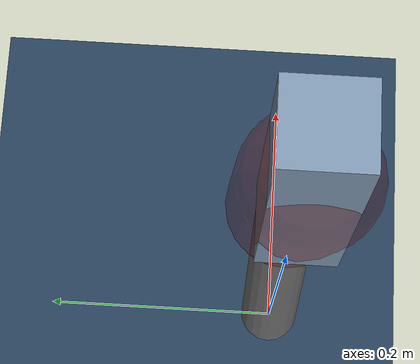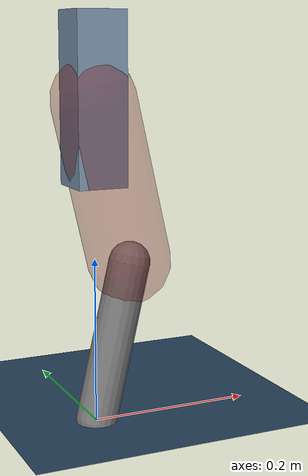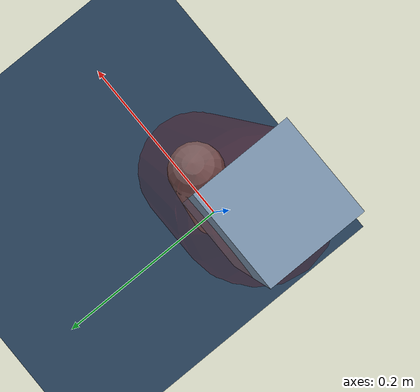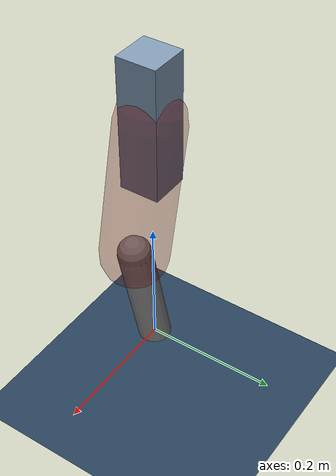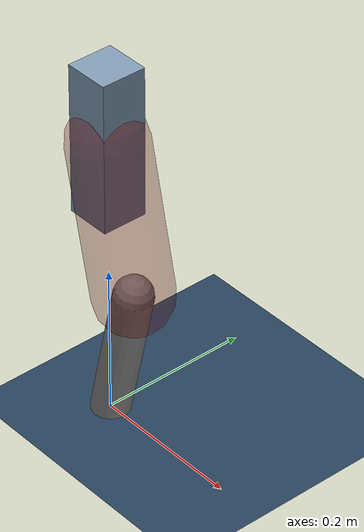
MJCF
<mujoco model="Hopper2D">
	<compiler inertiafromgeom="true" angle="radian" />
	<option timestep="0.001" integrator="implicit" cone="elliptic" solver="Newton" tolerance="1e-10" />

	<default>
		<geom contype="1" conaffinity="1" condim="3" friction="2 0.005 0.0001" solref="0.005 1" />
		<joint limited="true" damping="0.1" />
	</default>

	<asset>
		<texture name="skybox" type="skybox" builtin="gradient" rgb1=".4 .6 .8" rgb2="0 0 0" width="800" height="800" />
		<texture name="grid" type="2d" builtin="checker" rgb1=".1 .2 .3" rgb2=".2 .3 .4" width="300" height="300" mark="edge" markrgb=".2 .3 .4" />
		<material name="ground" texture="grid" texrepeat="1 1" texuniform="true" reflectance="0.1" />
		<material name="leg" rgba="0.5 0.6 0.7 1" />
	</asset>

	<worldbody>

		<geom name="floor" type="plane" size="5 5 0.25" material="ground" />

		<light directional="false" diffuse="0.8 0.8 0.8" specular="0.3 0.3 0.3" pos="0 0 2" dir="0 0 -1" />
		<light mode="targetbodycom" target="base" directional="false" diffuse="0.8 0.8 0.8" specular="0.3 0.3 0.3" pos="0 0 2" dir="0 0 -1" />

		<camera name="fixed" pos="0 -2 1" xyaxes="1 0 0 0 0 1" />
		<camera name="tracking" mode="trackcom" pos="0 -3 1" />

		<body name="root" pos="0 0 0.38676854329718013">
			<joint name="slide_x" type="slide" axis="1 0 0" range="-100 100" />
			<joint name="slide_z" type="slide" axis="0 0 1" range="0 10" />

			<body name="base" pos="0 0 0">
				<geom name="torso" type="box" size="0.03 0.03 0.1" mass="2.6959999999999997" material="leg" />

				<body name="link1" pos="0 0 0" euler="0 1.3463910174680602 0">
					<joint type="hinge" axis="0 -1 0" pos="0 0 0" name="hinge1" limited="true" range="-3.14 3.14" stiffness="0" damping="0.1" />
					<geom name="thigh" type="capsule" fromto="0 0 0 0.19889154165905684 0 0" size="0.05" rgba="0.5 0 0 0.3" mass="0.7269288541476421" />

					<body name="link2" pos="0.19889154165905684 0 0" euler="0 0.44998103943606127 0">
						<joint type="hinge" axis="0 -1 0" pos="0 0 0" name="hinge2" limited="true" range="-3.14 3.14" stiffness="0" damping="0.1" />
						<geom name="shank" type="capsule" fromto="0 0 0 0.1978770016381233 0 0" size="0.025" mass="0.39910160131049865" />

					</body>
				</body>
			</body>
		</body>
	</worldbody>

	<actuator>
		<motor name="torque1" joint="hinge1" ctrlrange="-93.57986772152883 93.57986772152883" ctrllimited="true" gear="1" />
		<motor name="torque2" joint="hinge2" ctrlrange="-99.6087148999812 99.6087148999812" ctrllimited="true" gear="1" />
	</actuator>
</mujoco>
